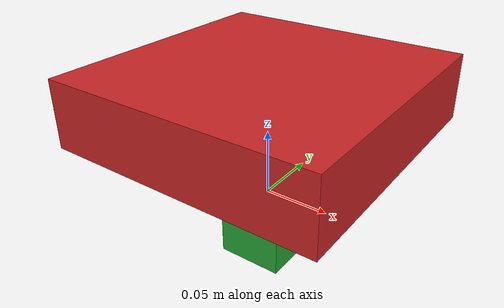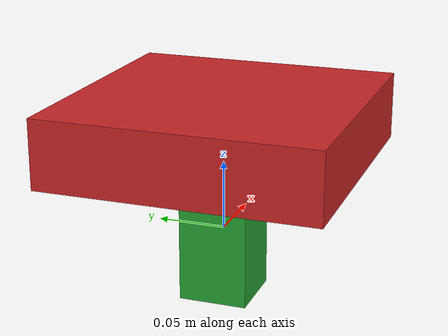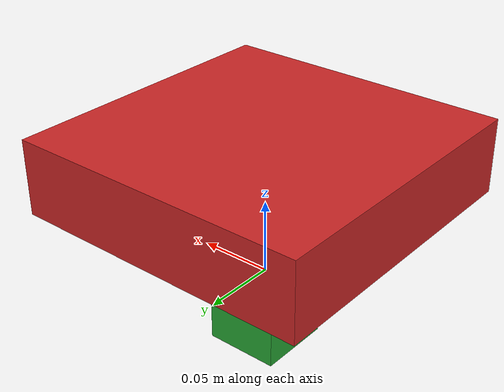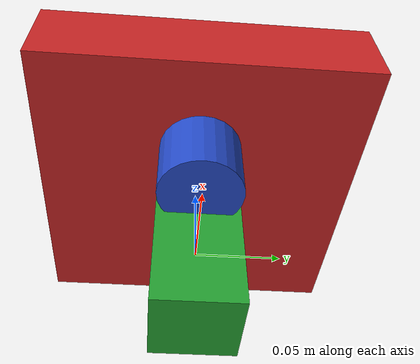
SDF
<sdf version="1.6">
  <model name="mobile_robot">
    <static>false</static>

    <link name="world_link" />

    <link name="first_base_link">
      <pose>0 0 0.075 0 0 0</pose>
      <visual name="first_base_visual"> <!-- Adicionado name -->
        <geometry>
          <box>
            <size>0.2 0.2 0.05</size> <!-- Tamanho do corpo -->
          </box>
        </geometry>
        <material>
          <script>
            <uri>file://media/materials/scripts/gazebo.material</uri>
            <name>Red</name>
          </script>
        </material>
      </visual>
    </link>

    <link name="lidar_link">
      <pose>0.04 0 0.035 0 0 0</pose>
      <visual name="lidar_visual"> <!-- Adicionado name -->
        <geometry>
          <cylinder>
            <radius>0.025</radius> <!-- Raio do LIDAR -->
            <length>0.05</length> <!-- Comprimento do LIDAR -->
          </cylinder>
        </geometry>
        <material>
          <script>
            <uri>file://media/materials/scripts/gazebo.material</uri>
            <name>Blue</name>
          </script>
        </material>
      </visual>
    </link>

    <joint name="first_base_to_world" type="fixed">
      <parent>world_link</parent>
      <child>first_base_link</child>
    </joint>

    <!-- Definição dos motores -->
    <link name="front_left_motor_link">
      <visual name="front_left_motor_visual"> <!-- Adicionado name -->
        <geometry>
          <box>
            <size>0.05 0.05 0.1</size> <!-- Tamanho do motor -->
          </box>
        </geometry>
        <material>
          <script>
            <uri>file://media/materials/scripts/gazebo.material</uri>
            <name>Green</name>
          </script>
        </material>
      </visual>
    </link>

    <link name="front_right_motor_link">
      <visual name="front_right_motor_visual"> <!-- Adicionado name -->
        <geometry>
          <box>
            <size>0.05 0.05 0.1</size>
          </box>
        </geometry>
        <material>
          <script>
            <uri>file://media/materials/scripts/gazebo.material</uri>
            <name>Green</name>
          </script>
        </material>
      </visual>
    </link>

    <link name="back_left_motor_link">
      <visual name="back_left_motor_visual"> <!-- Adicionado name -->
        <geometry>
          <box>
            <size>0.05 0.05 0.1</size>
          </box>
        </geometry>
        <material>
          <script>
            <uri>file://media/materials/scripts/gazebo.material</uri>
            <name>Green</name>
          </script>
        </material>
      </visual>
    </link>

    <link name="back_right_motor_link">
      <visual name="back_right_motor_visual"> <!-- Adicionado name -->
        <geometry>
          <box>
            <size>0.05 0.05 0.1</size>
          </box>
        </geometry>
        <material>
          <script>
            <uri>file://media/materials/scripts/gazebo.material</uri>
            <name>Green</name>
          </script>
        </material>
      </visual>
    </link>

    <!-- Rodas -->
    <link name="front_left_wheel_link">
      <visual name="front_left_wheel_visual"> <!-- Adicionado name -->
        <geometry>
          <cylinder>
            <radius>0.025</radius>
            <length>0.01</length>
          </cylinder>
        </geometry>
        <material>
          <script>
            <uri>file://media/materials/scripts/gazebo.material</uri>
            <name>Black</name>
          </script>
        </material>
      </visual>
    </link>

    <link name="front_right_wheel_link">
      <visual name="front_right_wheel_visual"> <!-- Adicionado name -->
        <geometry>
          <cylinder>
            <radius>0.025</radius>
            <length>0.01</length>
          </cylinder>
        </geometry>
        <material>
          <script>
            <uri>file://media/materials/scripts/gazebo.material</uri>
            <name>Black</name>
          </script>
        </material>
      </visual>
    </link>

    <link name="back_left_wheel_link">
      <visual name="back_left_wheel_visual"> <!-- Adicionado name -->
        <geometry>
          <cylinder>
            <radius>0.025</radius>
            <length>0.01</length>
          </cylinder>
        </geometry>
        <material>
          <script>
            <uri>file://media/materials/scripts/gazebo.material</uri>
            <name>Black</name>
          </script>
        </material>
      </visual>
    </link>

    <link name="back_right_wheel_link">
      <visual name="back_right_wheel_visual"> <!-- Adicionado name -->
        <geometry>
          <cylinder>
            <radius>0.025</radius>
            <length>0.01</length>
          </cylinder>
        </geometry>
        <material>
          <script>
            <uri>file://media/materials/scripts/gazebo.material</uri>
            <name>Black</name>
          </script>
        </material>
      </visual>
    </link>

    <!-- Juntas -->
    <joint name="front_left_motor_joint" type="revolute">
      <parent>first_base_link</parent>
      <child>front_left_motor_link</child>
      <pose>0.10 0.040 -0.025 0 0 0</pose>
    </joint>

    <joint name="front_right_motor_joint" type="revolute">
      <parent>first_base_link</parent>
      <child>front_right_motor_link</child>
      <pose>0.10 -0.040 -0.025 0 0 0</pose>
    </joint>

    <joint name="back_left_motor_joint" type="revolute">
      <parent>first_base_link</parent>
      <child>back_left_motor_link</child>
      <pose>-0.10 0.040 -0.025 0 0 0</pose>
    </joint>

    <joint name="back_right_motor_joint" type="revolute">
      <parent>first_base_link</parent>
      <child>back_right_motor_link</child>
      <pose>-0.10 -0.040 -0.025 0 0 0</pose>
    </joint>

    <!-- Plugin de Odometria -->
    <plugin name="odometry_plugin" filename="libgazebo_ros_diff_drive.so">
      <ros>
        <namespace>mobile_robot</namespace>
        <argument>cmd_vel:=cmd_vel</argument>
        <argument>odom:=odom</argument>
      </ros>
      <left_joint>front_left_motor_joint</left_joint>
      <right_joint>front_right_motor_joint</right_joint>
      <wheel_separation>0.215</wheel_separation>
      <wheel_diameter>0.035</wheel_diameter>
      <max_speed>1.0</max_speed>
      <min_speed>-1.0</min_speed>
      <publish_odom>true</publish_odom>
      <publish_odom_tf>true</publish_odom_tf>
      <robot_base_frame>first_base_link</robot_base_frame>
    </plugin>

    <!-- Plugin LIDAR -->
    <plugin name="lidar_plugin" filename="libgazebo_ros_laser.so">
      <ros>
        <namespace>mobile_robot</namespace>
        <argument>scan:=scan</argument>
      </ros>
      <frameName>lidar_link</frameName>
      <updateRate>20.0</updateRate>
      <visualize>true</visualize>
      <minRange>0.12</minRange>
      <maxRange>10.0</maxRange>
    </plugin>

  </model>
</sdf>
